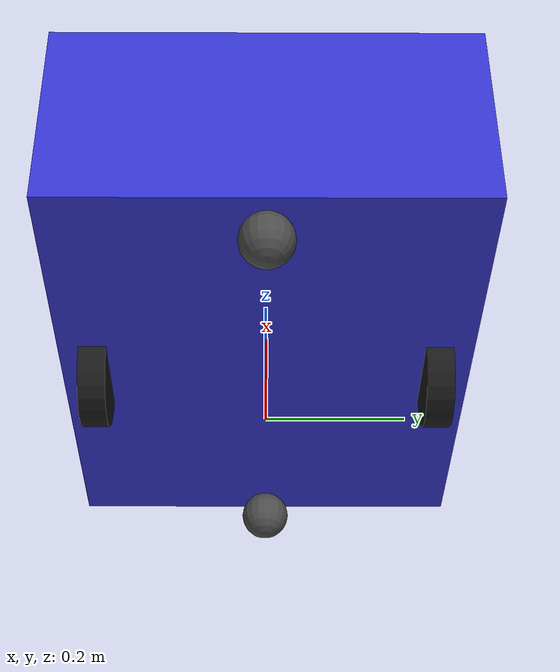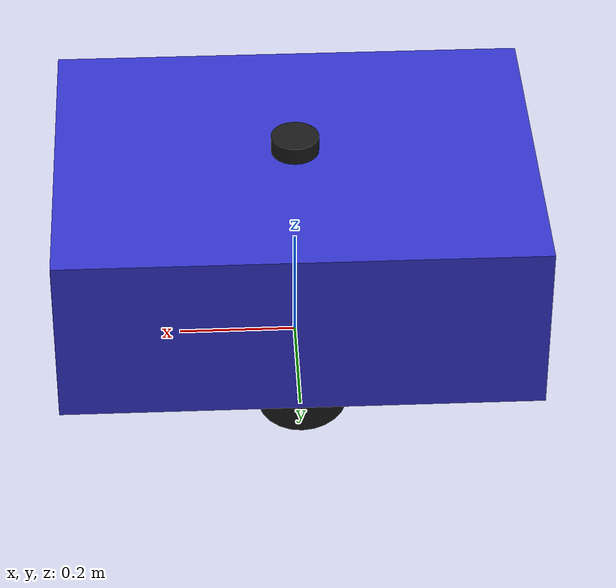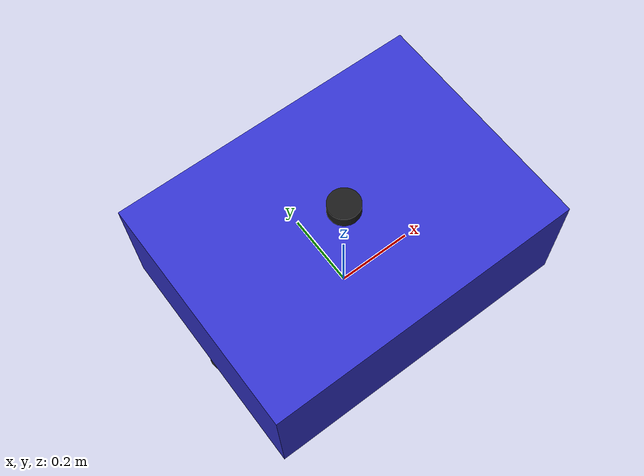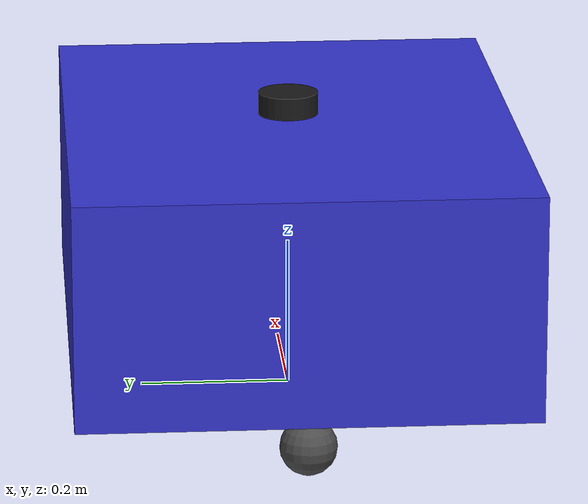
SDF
<?xml version="1.0" ?>
<sdf version="1.9">
  <model name="diffdrive_amr">
    <self_collide>false</self_collide>
    <link name="chassis">
      <pose>0 0 0.22499999999999998 0 0 0</pose>
      <inertial>
        <mass>50.0</mass>
        <inertia>
          <ixx>1.875000</ixx>
          <ixy>0</ixy>
          <ixz>0</ixz>
          <iyy>3.041667</iyy>
          <iyz>0</iyz>
          <izz>4.166667</izz>
        </inertia>
      </inertial>
      <visual name="chassis_visual">
        <geometry>
          <box>
            <size>0.8 0.6 0.3</size>
          </box>
        </geometry>
        <material>
          <ambient>0.2 0.2 0.8 1.0</ambient>
          <diffuse>0.2 0.2 0.8 1.0</diffuse>
        </material>
      </visual>
      <collision name="chassis_collision">
        <geometry>
          <box>
            <size>0.8 0.6 0.3</size>
          </box>
        </geometry>
      </collision>
    </link>
    <link name="left_wheel">
      <pose>0 0.25 0.075 1.5707963267948966 0 0</pose>
      <inertial>
        <mass>1.0</mass>
        <inertia>
          <ixx>0.001540</ixx>
          <ixy>0</ixy>
          <ixz>0</ixz>
          <iyy>0.001540</iyy>
          <iyz>0</iyz>
          <izz>0.002812</izz>
        </inertia>
      </inertial>
      <visual name="left_wheel_visual">
        <geometry>
          <cylinder>
            <radius>0.075</radius>
            <length>0.04</length>
          </cylinder>
        </geometry>
        <material>
          <ambient>0.1 0.1 0.1 1.0</ambient>
          <diffuse>0.1 0.1 0.1 1.0</diffuse>
        </material>
      </visual>
      <collision name="left_wheel_collision">
        <geometry>
          <cylinder>
            <radius>0.075</radius>
            <length>0.04</length>
          </cylinder>
        </geometry>
        <surface>
          <friction>
            <ode>
              <mu>1.0</mu>
              <mu2>1.0</mu2>
            </ode>
          </friction>
        </surface>
      </collision>
    </link>
    <joint name="left_wheel_joint" type="revolute">
      <parent>chassis</parent>
      <child>left_wheel</child>
      <axis>
        <xyz>0 0 1</xyz>
        <limit>
          <lower>-1e16</lower>
          <upper>1e16</upper>
        </limit>
      </axis>
    </joint>
    <link name="right_wheel">
      <pose>0 -0.25 0.075 1.5707963267948966 0 0</pose>
      <inertial>
        <mass>1.0</mass>
        <inertia>
          <ixx>0.001540</ixx>
          <ixy>0</ixy>
          <ixz>0</ixz>
          <iyy>0.001540</iyy>
          <iyz>0</iyz>
          <izz>0.002812</izz>
        </inertia>
      </inertial>
      <visual name="right_wheel_visual">
        <geometry>
          <cylinder>
            <radius>0.075</radius>
            <length>0.04</length>
          </cylinder>
        </geometry>
        <material>
          <ambient>0.1 0.1 0.1 1.0</ambient>
          <diffuse>0.1 0.1 0.1 1.0</diffuse>
        </material>
      </visual>
      <collision name="right_wheel_collision">
        <geometry>
          <cylinder>
            <radius>0.075</radius>
            <length>0.04</length>
          </cylinder>
        </geometry>
        <surface>
          <friction>
            <ode>
              <mu>1.0</mu>
              <mu2>1.0</mu2>
            </ode>
          </friction>
        </surface>
      </collision>
    </link>
    <joint name="right_wheel_joint" type="revolute">
      <parent>chassis</parent>
      <child>right_wheel</child>
      <axis>
        <xyz>0 0 1</xyz>
        <limit>
          <lower>-1e16</lower>
          <upper>1e16</upper>
        </limit>
      </axis>
    </joint>
    <link name="front_caster">
      <pose>0.36250000000000004 0 0.0375 0 0 0</pose>
      <inertial>
        <mass>0.5</mass>
        <inertia>
          <ixx>0.000281</ixx>
          <ixy>0</ixy>
          <ixz>0</ixz>
          <iyy>0.000281</iyy>
          <iyz>0</iyz>
          <izz>0.000281</izz>
        </inertia>
      </inertial>
      <visual name="front_caster_visual">
        <geometry>
          <sphere>
            <radius>0.0375</radius>
          </sphere>
        </geometry>
        <material>
          <ambient>0.3 0.3 0.3 1.0</ambient>
          <diffuse>0.3 0.3 0.3 1.0</diffuse>
        </material>
      </visual>
      <collision name="front_caster_collision">
        <geometry>
          <sphere>
            <radius>0.0375</radius>
          </sphere>
        </geometry>
        <surface>
          <friction>
            <ode>
              <mu>0.01</mu>
              <mu2>0.01</mu2>
            </ode>
          </friction>
        </surface>
      </collision>
    </link>
    <joint name="front_caster_joint" type="ball">
      <parent>chassis</parent>
      <child>front_caster</child>
    </joint>
    <link name="rear_caster">
      <pose>-0.36250000000000004 0 0.0375 0 0 0</pose>
      <inertial>
        <mass>0.5</mass>
        <inertia>
          <ixx>0.000281</ixx>
          <ixy>0</ixy>
          <ixz>0</ixz>
          <iyy>0.000281</iyy>
          <iyz>0</iyz>
          <izz>0.000281</izz>
        </inertia>
      </inertial>
      <visual name="rear_caster_visual">
        <geometry>
          <sphere>
            <radius>0.0375</radius>
          </sphere>
        </geometry>
        <material>
          <ambient>0.3 0.3 0.3 1.0</ambient>
          <diffuse>0.3 0.3 0.3 1.0</diffuse>
        </material>
      </visual>
      <collision name="rear_caster_collision">
        <geometry>
          <sphere>
            <radius>0.0375</radius>
          </sphere>
        </geometry>
        <surface>
          <friction>
            <ode>
              <mu>0.01</mu>
              <mu2>0.01</mu2>
            </ode>
          </friction>
        </surface>
      </collision>
    </link>
    <joint name="rear_caster_joint" type="ball">
      <parent>chassis</parent>
      <child>rear_caster</child>
    </joint>
    <plugin filename="gz-sim-diff-drive-system" name="gz::sim::systems::DiffDrive">
      <left_joint>left_wheel_joint</left_joint>
      <right_joint>right_wheel_joint</right_joint>
      <wheel_separation>0.5</wheel_separation>
      <wheel_radius>0.075</wheel_radius>
      <max_linear_acceleration>0.8</max_linear_acceleration>
      <max_angular_velocity>2.5</max_angular_velocity>
      <topic>cmd_vel</topic>
      <odom_topic>odom</odom_topic>
      <tf_topic>tf</tf_topic>
      <frame_id>odom</frame_id>
      <child_frame_id>chassis</child_frame_id>
      <odom_publish_frequency>15</odom_publish_frequency>
    </plugin>
    <link name="lidar_link">
      <pose>0 0 0.395 0 0 0</pose>
      <inertial>
        <mass>0.1</mass>
        <inertia>
          <ixx>0.000047</ixx>
          <ixy>0</ixy>
          <ixz>0</ixz>
          <iyy>0.000047</iyy>
          <iyz>0</iyz>
          <izz>0.000080</izz>
        </inertia>
      </inertial>
      <visual name="lidar_puck_visual">
        <geometry>
          <cylinder>
            <radius>0.04</radius>
            <length>0.03</length>
          </cylinder>
        </geometry>
        <material>
          <ambient>0.1 0.1 0.1 1.0</ambient>
          <diffuse>0.1 0.1 0.1 1.0</diffuse>
        </material>
      </visual>
      <collision name="lidar_puck_collision">
        <geometry>
          <cylinder>
            <radius>0.04</radius>
            <length>0.03</length>
          </cylinder>
        </geometry>
      </collision>
      <sensor name="lidar_sensor" type="gpu_lidar">
        <always_on>true</always_on>
        <update_rate>10</update_rate>
        <visualize>true</visualize>
        <topic>lidar</topic>
        <ray>
          <scan>
            <horizontal>
              <samples>360</samples>
              <resolution>1</resolution>
              <min_angle>-3.141593</min_angle>
              <max_angle>3.141593</max_angle>
            </horizontal>
            <vertical>
              <samples>16</samples>
              <resolution>1</resolution>
              <min_angle>-0.261799</min_angle>
              <max_angle>0.261799</max_angle>
            </vertical>
          </scan>
          <range>
            <min>0.08</min>
            <max>12.0</max>
            <resolution>0.01</resolution>
          </range>
          <noise>
            <type>gaussian</type>
            <mean>0.0</mean>
            <stddev>0.03</stddev>
          </noise>
        </ray>
      </sensor>
    </link>
    <joint name="lidar_joint" type="fixed">
      <parent>chassis</parent>
      <child>lidar_link</child>
    </joint>
    <link name="imu_link">
      <pose>0 0 0.22499999999999998 0 0 0</pose>
      <inertial>
        <mass>0.01</mass>
        <inertia>
          <ixx>0.000001</ixx>
          <iyy>0.000001</iyy>
          <izz>0.000001</izz>
          <ixy>0</ixy>
          <ixz>0</ixz>
          <iyz>0</iyz>
        </inertia>
      </inertial>
      <sensor name="imu_sensor" type="imu">
        <always_on>true</always_on>
        <update_rate>100</update_rate>
        <topic>imu</topic>
        <imu>
          <angular_velocity>
            <x>
              <noise type="gaussian">
                <mean>0.0</mean>
                <stddev>0.05235987755982989</stddev>
              </noise>
            </x>
            <y>
              <noise type="gaussian">
                <mean>0.0</mean>
                <stddev>0.05235987755982989</stddev>
              </noise>
            </y>
            <z>
              <noise type="gaussian">
                <mean>0.0</mean>
                <stddev>0.05235987755982989</stddev>
              </noise>
            </z>
          </angular_velocity>
          <linear_acceleration>
            <x>
              <noise type="gaussian">
                <mean>0.0</mean>
                <stddev>0.01</stddev>
              </noise>
            </x>
            <y>
              <noise type="gaussian">
                <mean>0.0</mean>
                <stddev>0.01</stddev>
              </noise>
            </y>
            <z>
              <noise type="gaussian">
                <mean>0.0</mean>
                <stddev>0.01</stddev>
              </noise>
            </z>
          </linear_acceleration>
        </imu>
      </sensor>
    </link>
    <joint name="imu_joint" type="fixed">
      <parent>chassis</parent>
      <child>imu_link</child>
    </joint>
    <plugin filename="gz-sim-joint-state-publisher-system" name="gz::sim::systems::JointStatePublisher"/>
  </model>
</sdf>
